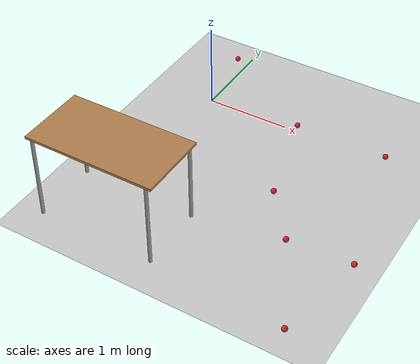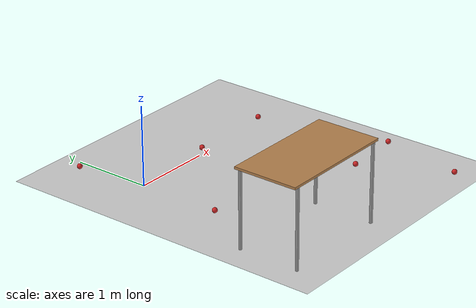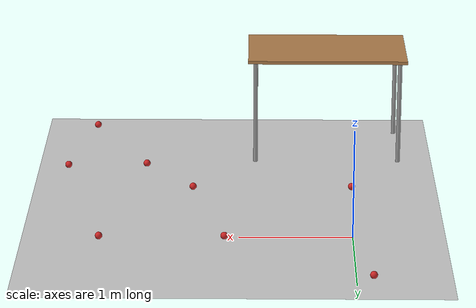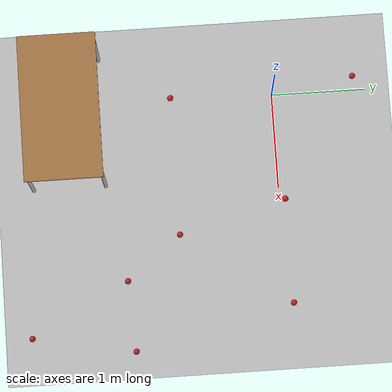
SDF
<sdf version="1.7">
 <world name="default">
  <light name="sun" type="directional">
   <pose>0 0 10 0 -0 0</pose>
   <diffuse>0.8 0.8 0.8 1</diffuse>
   <specular>0.2 0.2 0.2 1</specular>
   <attenuation>
    <range>1000</range>
    <constant>0.9</constant>
    <linear>0.01</linear>
    <quadratic>0.001</quadratic>
   </attenuation>
   <direction>-0.5 0.1 -0.9</direction>
   <spot><inner_angle>0</inner_angle><outer_angle>0</outer_angle><falloff>0</falloff></spot>
  </light>
  <model name="ground_plane">
   <static>1</static>
   <link name="link">
    <collision name="collision">
     <geometry><plane><normal>0 0 1</normal><size>100 100</size></plane></geometry>
     <surface><friction><ode><mu>100</mu><mu2>50</mu2></ode></friction></surface>
    </collision>
    <visual name="visual">
     <cast_shadows>0</cast_shadows>
     <geometry><plane><normal>0 0 1</normal><size>100 100</size></plane></geometry>
     <material>
      <script><uri>file://media/materials/scripts/gazebo.material</uri><name>Gazebo/Grey</name></script>
     </material>
    </visual>
   </link>
  </model>
  <gravity>0 0 -9.8</gravity>
  <magnetic_field>6e-06 2.3e-05 -4.2e-05</magnetic_field>
  <atmosphere type="adiabatic"/>
  <physics type="ode">
   <max_step_size>0.001</max_step_size>
   <real_time_factor>1</real_time_factor>
   <real_time_update_rate>1000</real_time_update_rate>
  </physics>
  <scene><ambient>0.4 0.4 0.4 1</ambient><background>0.7 0.7 0.7 1</background><shadows>1</shadows></scene>
  <audio><device>default</device></audio>
  <spherical_coordinates>
   <surface_model>EARTH_WGS84</surface_model>
   <latitude_deg>0</latitude_deg>
   <longitude_deg>0</longitude_deg>
   <elevation>0</elevation>
   <heading_deg>0</heading_deg>
  </spherical_coordinates>
  <model name="table">
   <static>1</static>
   <link name="link">
    <collision name="surface">
     <pose>0 0 1 0 -0 0</pose>
     <geometry><box><size>1.5 0.8 0.03</size></box></geometry>
     <surface><friction><ode><mu>0.6</mu><mu2>0.6</mu2></ode></friction></surface>
    </collision>
    <visual name="visual1">
     <pose>0 0 1 0 -0 0</pose>
     <geometry><box><size>1.5 0.8 0.03</size></box></geometry>
     <material>
      <script><uri>file://media/materials/scripts/gazebo.material</uri><name>Gazebo/Wood</name></script>
     </material>
    </visual>
    <collision name="front_left_leg">
     <pose>0.68 0.38 0.5 0 -0 0</pose>
     <geometry><cylinder><radius>0.02</radius><length>1</length></cylinder></geometry>
    </collision>
    <visual name="front_left_leg">
     <pose>0.68 0.38 0.5 0 -0 0</pose>
     <geometry><cylinder><radius>0.02</radius><length>1</length></cylinder></geometry>
     <material>
      <script><uri>file://media/materials/scripts/gazebo.material</uri><name>Gazebo/Grey</name></script>
     </material>
    </visual>
    <collision name="front_right_leg">
     <pose>0.68 -0.38 0.5 0 -0 0</pose>
     <geometry><cylinder><radius>0.02</radius><length>1</length></cylinder></geometry>
    </collision>
    <visual name="front_right_leg">
     <pose>0.68 -0.38 0.5 0 -0 0</pose>
     <geometry><cylinder><radius>0.02</radius><length>1</length></cylinder></geometry>
     <material>
      <script><uri>file://media/materials/scripts/gazebo.material</uri><name>Gazebo/Grey</name></script>
     </material>
    </visual>
    <collision name="back_right_leg">
     <pose>-0.68 -0.38 0.5 0 -0 0</pose>
     <geometry><cylinder><radius>0.02</radius><length>1</length></cylinder></geometry>
    </collision>
    <visual name="back_right_leg">
     <pose>-0.68 -0.38 0.5 0 -0 0</pose>
     <geometry><cylinder><radius>0.02</radius><length>1</length></cylinder></geometry>
     <material>
      <script><uri>file://media/materials/scripts/gazebo.material</uri><name>Gazebo/Grey</name></script>
     </material>
    </visual>
    <collision name="back_left_leg">
     <pose>-0.68 0.38 0.5 0 -0 0</pose>
     <geometry><cylinder><radius>0.02</radius><length>1</length></cylinder></geometry>
    </collision>
    <visual name="back_left_leg">
     <pose>-0.68 0.38 0.5 0 -0 0</pose>
     <geometry><cylinder><radius>0.02</radius><length>1</length></cylinder></geometry>
     <material>
      <script><uri>file://media/materials/scripts/gazebo.material</uri><name>Gazebo/Grey</name></script>
     </material>
    </visual>
   </link>
   <pose>0.181201 -2.19529 0 0 -0 0</pose>
  </model>
  <model name="RoboCup SPL Ball">
   <static>0</static>
   <link name="ball">
    <inertial>
     <mass>0.0056</mass>
     <inertia>
      <ixx>2.37e-06</ixx>
      <iyy>2.37e-06</iyy>
      <izz>2.37e-06</izz>
      <ixy>0</ixy>
      <ixz>0</ixz>
      <iyz>0</iyz>
     </inertia>
    </inertial>
    <collision name="collision"><geometry><sphere><radius>0.0325</radius></sphere></geometry></collision>
    <visual name="visual">
     <geometry><sphere><radius>0.0325</radius></sphere></geometry>
     <material>
      <script><uri>file://media/materials/scripts/gazebo.material</uri><name>Gazebo/RedBright</name></script>
     </material>
    </visual>
   </link>
   <pose>1.43525 -1.06821 0.0425 0 -0 0</pose>
  </model>
  <model name="RoboCup SPL Ball_0">
   <static>0</static>
   <link name="ball">
    <inertial>
     <mass>0.0056</mass>
     <inertia>
      <ixx>2.37e-06</ixx>
      <iyy>2.37e-06</iyy>
      <izz>2.37e-06</izz>
      <ixy>0</ixy>
      <ixz>0</ixz>
      <iyz>0</iyz>
     </inertia>
    </inertial>
    <collision name="collision"><geometry><sphere><radius>0.0325</radius></sphere></geometry></collision>
    <visual name="visual">
     <geometry><sphere><radius>0.0325</radius></sphere></geometry>
     <material>
      <script><uri>file://media/materials/scripts/gazebo.material</uri><name>Gazebo/RedBright</name></script>
     </material>
    </visual>
   </link>
   <pose>1.89046 -1.64206 0.0425 0 -0 0</pose>
  </model>
  <model name="RoboCup SPL Ball_clone">
   <static>0</static>
   <link name="ball">
    <inertial>
     <mass>0.0056</mass>
     <inertia>
      <ixx>2.37e-06</ixx>
      <iyy>2.37e-06</iyy>
      <izz>2.37e-06</izz>
      <ixy>0</ixy>
      <ixz>0</ixz>
      <iyz>0</iyz>
     </inertia>
    </inertial>
    <collision name="collision"><geometry><sphere><radius>0.0325</radius></sphere></geometry></collision>
    <visual name="visual">
     <geometry><sphere><radius>0.0325</radius></sphere></geometry>
     <material>
      <script><uri>file://media/materials/scripts/gazebo.material</uri><name>Gazebo/RedBright</name></script>
     </material>
    </visual>
   </link>
   <pose>1.12795 0.064166 0.0425 0 -0 0</pose>
  </model>
  <model name="RoboCup SPL Ball_clone_0">
   <static>0</static>
   <link name="ball">
    <inertial>
     <mass>0.0056</mass>
     <inertia>
      <ixx>2.37e-06</ixx>
      <iyy>2.37e-06</iyy>
      <izz>2.37e-06</izz>
      <ixy>0</ixy>
      <ixz>0</ixz>
      <iyz>0</iyz>
     </inertia>
    </inertial>
    <collision name="collision"><geometry><sphere><radius>0.0325</radius></sphere></geometry></collision>
    <visual name="visual">
     <geometry><sphere><radius>0.0325</radius></sphere></geometry>
     <material>
      <script><uri>file://media/materials/scripts/gazebo.material</uri><name>Gazebo/RedBright</name></script>
     </material>
    </visual>
   </link>
   <pose>-0.030653 -1.07699 0.0425 0 -0 0</pose>
  </model>
  <model name="RoboCup SPL Ball_clone_1">
   <static>0</static>
   <link name="ball">
    <inertial>
     <mass>0.0056</mass>
     <inertia>
      <ixx>2.37e-06</ixx>
      <iyy>2.37e-06</iyy>
      <izz>2.37e-06</izz>
      <ixy>0</ixy>
      <ixz>0</ixz>
      <iyz>0</iyz>
     </inertia>
    </inertial>
    <collision name="collision"><geometry><sphere><radius>0.0325</radius></sphere></geometry></collision>
    <visual name="visual">
     <geometry><sphere><radius>0.0325</radius></sphere></geometry>
     <material>
      <script><uri>file://media/materials/scripts/gazebo.material</uri><name>Gazebo/RedBright</name></script>
     </material>
    </visual>
   </link>
   <pose>-0.144227 0.869854 0.0425 0 -0 0</pose>
  </model>
  <model name="RoboCup SPL Ball_clone_2">
   <static>0</static>
   <link name="ball">
    <inertial>
     <mass>0.0056</mass>
     <inertia>
      <ixx>2.37e-06</ixx>
      <iyy>2.37e-06</iyy>
      <izz>2.37e-06</izz>
      <ixy>0</ixy>
      <ixz>0</ixz>
      <iyz>0</iyz>
     </inertia>
    </inertial>
    <collision name="collision"><geometry><sphere><radius>0.0325</radius></sphere></geometry></collision>
    <visual name="visual">
     <geometry><sphere><radius>0.0325</radius></sphere></geometry>
     <material>
      <script><uri>file://media/materials/scripts/gazebo.material</uri><name>Gazebo/RedBright</name></script>
     </material>
    </visual>
   </link>
   <pose>2.22888 0.074159 0.0425 0 -0 0</pose>
  </model>
  <model name="RoboCup SPL Ball_clone_3">
   <static>0</static>
   <link name="ball">
    <inertial>
     <mass>0.0056</mass>
     <inertia>
      <ixx>2.37e-06</ixx>
      <iyy>2.37e-06</iyy>
      <izz>2.37e-06</izz>
      <ixy>0</ixy>
      <ixz>0</ixz>
      <iyz>0</iyz>
     </inertia>
    </inertial>
    <collision name="collision"><geometry><sphere><radius>0.0325</radius></sphere></geometry></collision>
    <visual name="visual">
     <geometry><sphere><radius>0.0325</radius></sphere></geometry>
     <material>
      <script><uri>file://media/materials/scripts/gazebo.material</uri><name>Gazebo/RedBright</name></script>
     </material>
    </visual>
   </link>
   <pose>2.63171 -1.59799 0.0425 0 -0 0</pose>
  </model>
  <model name="RoboCup SPL Ball_clone_4">
   <static>0</static>
   <link name="ball">
    <inertial>
     <mass>0.0056</mass>
     <inertia>
      <ixx>2.37e-06</ixx>
      <iyy>2.37e-06</iyy>
      <izz>2.37e-06</izz>
      <ixy>0</ixy>
      <ixz>0</ixz>
      <iyz>0</iyz>
     </inertia>
    </inertial>
    <collision name="collision"><geometry><sphere><radius>0.0325</radius></sphere></geometry></collision>
    <visual name="visual">
     <geometry><sphere><radius>0.0325</radius></sphere></geometry>
     <material>
      <script><uri>file://media/materials/scripts/gazebo.material</uri><name>Gazebo/RedBright</name></script>
     </material>
    </visual>
   </link>
   <pose>2.4279 -2.67092 0.0425 0 -0 0</pose>
  </model>
 </world>
</sdf>
